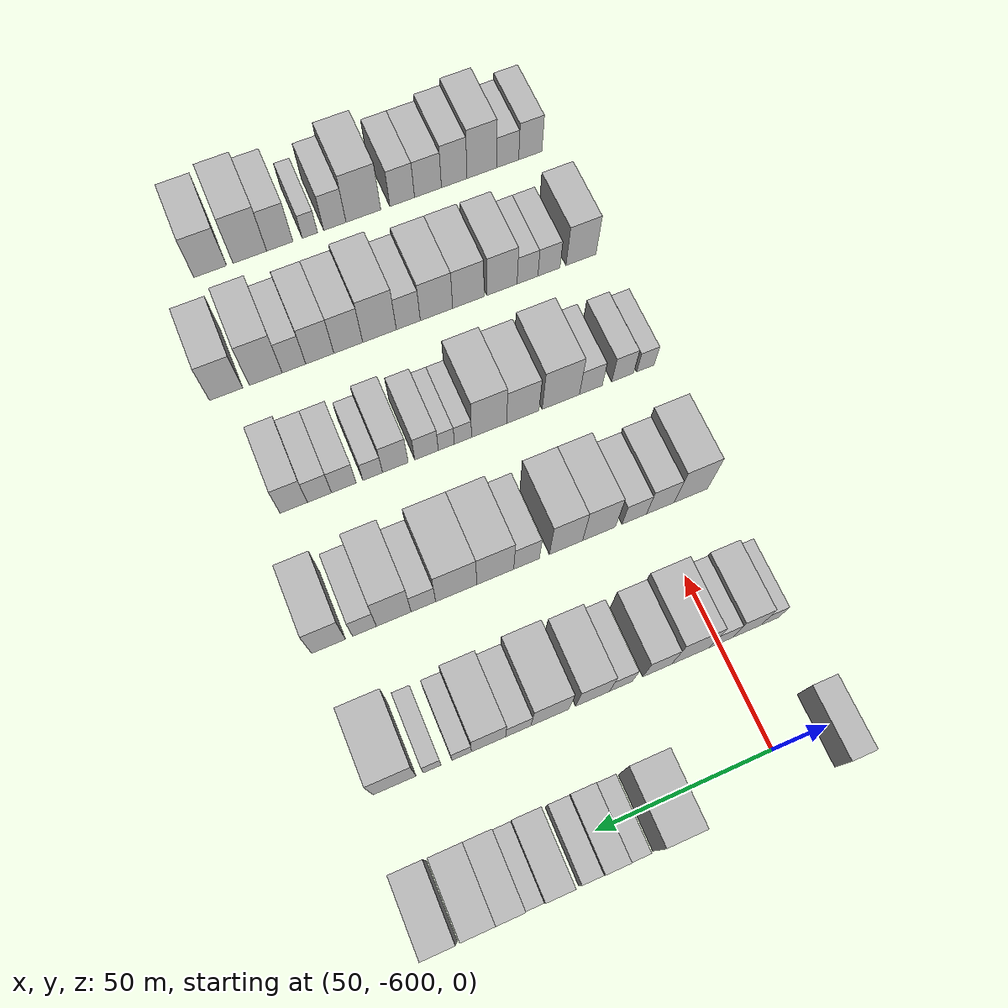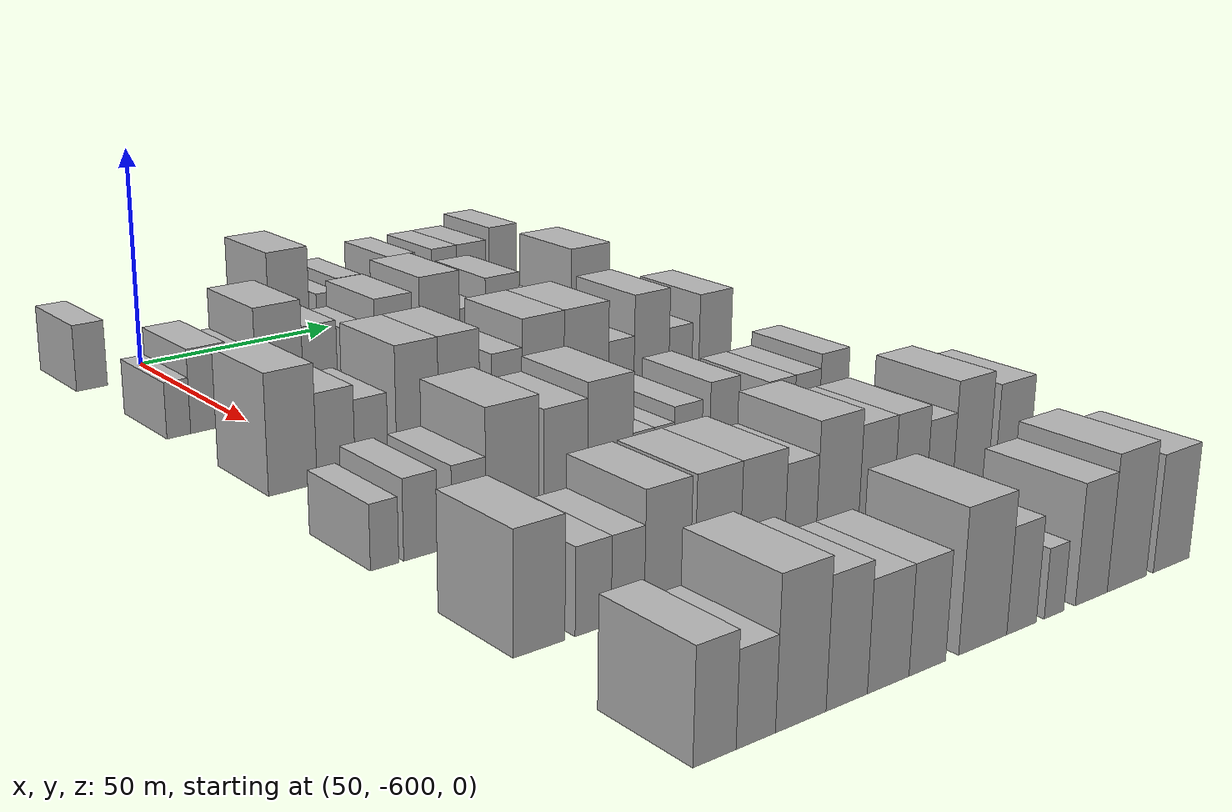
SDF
<sdf version="1.6">
 <world name="default">
  <model name="building_1">
   <static>1</static>
   <pose>50.0000 -616.3699 0 0.000000 0.000000 0.000000</pose>
   <link name="link">
    <pose>0 0 7.50 0 0 0</pose>
    <collision name="collision"><geometry><box><size>20.0000 7.2602 15.0000</size></box></geometry></collision>
    <visual name="visual">
     <cast_shadows>0</cast_shadows>
     <geometry><box><size>20.0000 7.2602 15.0000</size></box></geometry>
     <material>
      <script>
       <uri>model://HANNAS_wall/materials/scripts</uri>
       <uri>model://HANNAS_wall/materials/textures</uri>
       <name>vrc/HANNAS_wall</name>
      </script>
     </material>
    </visual>
   </link>
  </model>
  <model name="building_2">
   <static>1</static>
   <pose>50.0000 -566.4048 0 0.000000 0.000000 0.000000</pose>
   <link name="link">
    <pose>0 0 12.00 0 0 0</pose>
    <collision name="collision"><geometry><box><size>20.0000 10.8900 24.0000</size></box></geometry></collision>
    <visual name="visual">
     <cast_shadows>0</cast_shadows>
     <geometry><box><size>20.0000 10.8900 24.0000</size></box></geometry>
     <material>
      <script>
       <uri>model://HANNAS_wall/materials/scripts</uri>
       <uri>model://HANNAS_wall/materials/textures</uri>
       <name>vrc/HANNAS_wall</name>
      </script>
     </material>
    </visual>
   </link>
  </model>
  <model name="building_3">
   <static>1</static>
   <pose>50.0000 -556.1488 0 0.000000 0.000000 0.000000</pose>
   <link name="link">
    <pose>0 0 6.00 0 0 0</pose>
    <collision name="collision"><geometry><box><size>20.0000 5.6221 12.0000</size></box></geometry></collision>
    <visual name="visual">
     <cast_shadows>0</cast_shadows>
     <geometry><box><size>20.0000 5.6221 12.0000</size></box></geometry>
     <material>
      <script>
       <uri>model://HANNAS_wall/materials/scripts</uri>
       <uri>model://HANNAS_wall/materials/textures</uri>
       <name>vrc/HANNAS_wall</name>
      </script>
     </material>
    </visual>
   </link>
  </model>
  <model name="building_4">
   <static>1</static>
   <pose>50.0000 -549.8595 0 0.000000 0.000000 0.000000</pose>
   <link name="link">
    <pose>0 0 7.50 0 0 0</pose>
    <collision name="collision"><geometry><box><size>20.0000 6.9566 15.0000</size></box></geometry></collision>
    <visual name="visual">
     <cast_shadows>0</cast_shadows>
     <geometry><box><size>20.0000 6.9566 15.0000</size></box></geometry>
     <material>
      <script>
       <uri>model://HANNAS_wall/materials/scripts</uri>
       <uri>model://HANNAS_wall/materials/textures</uri>
       <name>vrc/HANNAS_wall</name>
      </script>
     </material>
    </visual>
   </link>
  </model>
  <model name="building_5">
   <static>1</static>
   <pose>50.0000 -543.4747 0 0.000000 0.000000 0.000000</pose>
   <link name="link">
    <pose>0 0 6.00 0 0 0</pose>
    <collision name="collision"><geometry><box><size>20.0000 5.8130 12.0000</size></box></geometry></collision>
    <visual name="visual">
     <cast_shadows>0</cast_shadows>
     <geometry><box><size>20.0000 5.8130 12.0000</size></box></geometry>
     <material>
      <script>
       <uri>model://HANNAS_wall/materials/scripts</uri>
       <uri>model://HANNAS_wall/materials/textures</uri>
       <name>vrc/HANNAS_wall</name>
      </script>
     </material>
    </visual>
   </link>
  </model>
  <model name="building_6">
   <static>1</static>
   <pose>50.0000 -534.6641 0 0.000000 0.000000 0.000000</pose>
   <link name="link">
    <pose>0 0 9.00 0 0 0</pose>
    <collision name="collision"><geometry><box><size>20.0000 7.8081 18.0000</size></box></geometry></collision>
    <visual name="visual">
     <cast_shadows>0</cast_shadows>
     <geometry><box><size>20.0000 7.8081 18.0000</size></box></geometry>
     <material>
      <script>
       <uri>model://HANNAS_wall/materials/scripts</uri>
       <uri>model://HANNAS_wall/materials/textures</uri>
       <name>vrc/HANNAS_wall</name>
      </script>
     </material>
    </visual>
   </link>
  </model>
  <model name="building_7">
   <static>1</static>
   <pose>50.0000 -528.2909 0 0.000000 0.000000 0.000000</pose>
   <link name="link">
    <pose>0 0 6.00 0 0 0</pose>
    <collision name="collision"><geometry><box><size>20.0000 4.9383 12.0000</size></box></geometry></collision>
    <visual name="visual">
     <cast_shadows>0</cast_shadows>
     <geometry><box><size>20.0000 4.9383 12.0000</size></box></geometry>
     <material>
      <script>
       <uri>model://HANNAS_wall/materials/scripts</uri>
       <uri>model://HANNAS_wall/materials/textures</uri>
       <name>vrc/HANNAS_wall</name>
      </script>
     </material>
    </visual>
   </link>
  </model>
  <model name="building_8">
   <static>1</static>
   <pose>50.0000 -522.0054 0 0.000000 0.000000 0.000000</pose>
   <link name="link">
    <pose>0 0 9.00 0 0 0</pose>
    <collision name="collision"><geometry><box><size>20.0000 7.6328 18.0000</size></box></geometry></collision>
    <visual name="visual">
     <cast_shadows>0</cast_shadows>
     <geometry><box><size>20.0000 7.6328 18.0000</size></box></geometry>
     <material>
      <script>
       <uri>model://HANNAS_wall/materials/scripts</uri>
       <uri>model://HANNAS_wall/materials/textures</uri>
       <name>vrc/HANNAS_wall</name>
      </script>
     </material>
    </visual>
   </link>
  </model>
  <model name="building_9">
   <static>1</static>
   <pose>50.0000 -513.7123 0 0.000000 0.000000 0.000000</pose>
   <link name="link">
    <pose>0 0 9.00 0 0 0</pose>
    <collision name="collision"><geometry><box><size>20.0000 8.9535 18.0000</size></box></geometry></collision>
    <visual name="visual">
     <cast_shadows>0</cast_shadows>
     <geometry><box><size>20.0000 8.9535 18.0000</size></box></geometry>
     <material>
      <script>
       <uri>model://HANNAS_wall/materials/scripts</uri>
       <uri>model://HANNAS_wall/materials/textures</uri>
       <name>vrc/HANNAS_wall</name>
      </script>
     </material>
    </visual>
   </link>
  </model>
  <model name="building_10">
   <static>1</static>
   <pose>50.0000 -503.8203 0 0.000000 0.000000 0.000000</pose>
   <link name="link">
    <pose>0 0 10.50 0 0 0</pose>
    <collision name="collision"><geometry><box><size>20.0000 8.8305 21.0000</size></box></geometry></collision>
    <visual name="visual">
     <cast_shadows>0</cast_shadows>
     <geometry><box><size>20.0000 8.8305 21.0000</size></box></geometry>
     <material>
      <script>
       <uri>model://HANNAS_wall/materials/scripts</uri>
       <uri>model://HANNAS_wall/materials/textures</uri>
       <name>vrc/HANNAS_wall</name>
      </script>
     </material>
    </visual>
   </link>
  </model>
  <model name="building_129">
   <static>1</static>
   <pose>90.0000 -615.3354 0 0.000000 0.000000 0.000000</pose>
   <link name="link">
    <pose>0 0 6.00 0 0 0</pose>
    <collision name="collision"><geometry><box><size>20.0000 5.3293 12.0000</size></box></geometry></collision>
    <visual name="visual">
     <cast_shadows>0</cast_shadows>
     <geometry><box><size>20.0000 5.3293 12.0000</size></box></geometry>
     <material>
      <script>
       <uri>model://HANNAS_wall/materials/scripts</uri>
       <uri>model://HANNAS_wall/materials/textures</uri>
       <name>vrc/HANNAS_wall</name>
      </script>
     </material>
    </visual>
   </link>
  </model>
  <model name="building_130">
   <static>1</static>
   <pose>90.0000 -608.3362 0 0.000000 0.000000 0.000000</pose>
   <link name="link">
    <pose>0 0 9.00 0 0 0</pose>
    <collision name="collision"><geometry><box><size>20.0000 8.6690 18.0000</size></box></geometry></collision>
    <visual name="visual">
     <cast_shadows>0</cast_shadows>
     <geometry><box><size>20.0000 8.6690 18.0000</size></box></geometry>
     <material>
      <script>
       <uri>model://HANNAS_wall/materials/scripts</uri>
       <uri>model://HANNAS_wall/materials/textures</uri>
       <name>vrc/HANNAS_wall</name>
      </script>
     </material>
    </visual>
   </link>
  </model>
  <model name="building_131">
   <static>1</static>
   <pose>90.0000 -600.6111 0 0.000000 0.000000 0.000000</pose>
   <link name="link">
    <pose>0 0 7.50 0 0 0</pose>
    <collision name="collision"><geometry><box><size>20.0000 6.7813 15.0000</size></box></geometry></collision>
    <visual name="visual">
     <cast_shadows>0</cast_shadows>
     <geometry><box><size>20.0000 6.7813 15.0000</size></box></geometry>
     <material>
      <script>
       <uri>model://HANNAS_wall/materials/scripts</uri>
       <uri>model://HANNAS_wall/materials/textures</uri>
       <name>vrc/HANNAS_wall</name>
      </script>
     </material>
    </visual>
   </link>
  </model>
  <model name="building_132">
   <static>1</static>
   <pose>90.0000 -591.6251 0 0.000000 0.000000 0.000000</pose>
   <link name="link">
    <pose>0 0 12.00 0 0 0</pose>
    <collision name="collision"><geometry><box><size>20.0000 11.1907 24.0000</size></box></geometry></collision>
    <visual name="visual">
     <cast_shadows>0</cast_shadows>
     <geometry><box><size>20.0000 11.1907 24.0000</size></box></geometry>
     <material>
      <script>
       <uri>model://HANNAS_wall/materials/scripts</uri>
       <uri>model://HANNAS_wall/materials/textures</uri>
       <name>vrc/HANNAS_wall</name>
      </script>
     </material>
    </visual>
   </link>
  </model>
  <model name="building_133">
   <static>1</static>
   <pose>90.0000 -581.7948 0 0.000000 0.000000 0.000000</pose>
   <link name="link">
    <pose>0 0 9.00 0 0 0</pose>
    <collision name="collision"><geometry><box><size>20.0000 8.4698 18.0000</size></box></geometry></collision>
    <visual name="visual">
     <cast_shadows>0</cast_shadows>
     <geometry><box><size>20.0000 8.4698 18.0000</size></box></geometry>
     <material>
      <script>
       <uri>model://HANNAS_wall/materials/scripts</uri>
       <uri>model://HANNAS_wall/materials/textures</uri>
       <name>vrc/HANNAS_wall</name>
      </script>
     </material>
    </visual>
   </link>
  </model>
  <model name="building_134">
   <static>1</static>
   <pose>90.0000 -571.2249 0 0.000000 0.000000 0.000000</pose>
   <link name="link">
    <pose>0 0 7.50 0 0 0</pose>
    <collision name="collision"><geometry><box><size>20.0000 6.6700 15.0000</size></box></geometry></collision>
    <visual name="visual">
     <cast_shadows>0</cast_shadows>
     <geometry><box><size>20.0000 6.6700 15.0000</size></box></geometry>
     <material>
      <script>
       <uri>model://HANNAS_wall/materials/scripts</uri>
       <uri>model://HANNAS_wall/materials/textures</uri>
       <name>vrc/HANNAS_wall</name>
      </script>
     </material>
    </visual>
   </link>
  </model>
  <model name="building_135">
   <static>1</static>
   <pose>90.0000 -563.0262 0 0.000000 0.000000 0.000000</pose>
   <link name="link">
    <pose>0 0 10.50 0 0 0</pose>
    <collision name="collision"><geometry><box><size>20.0000 9.7274 21.0000</size></box></geometry></collision>
    <visual name="visual">
     <cast_shadows>0</cast_shadows>
     <geometry><box><size>20.0000 9.7274 21.0000</size></box></geometry>
     <material>
      <script>
       <uri>model://HANNAS_wall/materials/scripts</uri>
       <uri>model://HANNAS_wall/materials/textures</uri>
       <name>vrc/HANNAS_wall</name>
      </script>
     </material>
    </visual>
   </link>
  </model>
  <model name="building_136">
   <static>1</static>
   <pose>90.0000 -550.7840 0 0.000000 0.000000 0.000000</pose>
   <link name="link">
    <pose>0 0 12.00 0 0 0</pose>
    <collision name="collision"><geometry><box><size>20.0000 10.7570 24.0000</size></box></geometry></collision>
    <visual name="visual">
     <cast_shadows>0</cast_shadows>
     <geometry><box><size>20.0000 10.7570 24.0000</size></box></geometry>
     <material>
      <script>
       <uri>model://HANNAS_wall/materials/scripts</uri>
       <uri>model://HANNAS_wall/materials/textures</uri>
       <name>vrc/HANNAS_wall</name>
      </script>
     </material>
    </visual>
   </link>
  </model>
  <model name="building_137">
   <static>1</static>
   <pose>90.0000 -541.8332 0 0.000000 0.000000 0.000000</pose>
   <link name="link">
    <pose>0 0 7.50 0 0 0</pose>
    <collision name="collision"><geometry><box><size>20.0000 7.1446 15.0000</size></box></geometry></collision>
    <visual name="visual">
     <cast_shadows>0</cast_shadows>
     <geometry><box><size>20.0000 7.1446 15.0000</size></box></geometry>
     <material>
      <script>
       <uri>model://HANNAS_wall/materials/scripts</uri>
       <uri>model://HANNAS_wall/materials/textures</uri>
       <name>vrc/HANNAS_wall</name>
      </script>
     </material>
    </visual>
   </link>
  </model>
  <model name="building_138">
   <static>1</static>
   <pose>90.0000 -533.5028 0 0.000000 0.000000 0.000000</pose>
   <link name="link">
    <pose>0 0 10.50 0 0 0</pose>
    <collision name="collision"><geometry><box><size>20.0000 9.5161 21.0000</size></box></geometry></collision>
    <visual name="visual">
     <cast_shadows>0</cast_shadows>
     <geometry><box><size>20.0000 9.5161 21.0000</size></box></geometry>
     <material>
      <script>
       <uri>model://HANNAS_wall/materials/scripts</uri>
       <uri>model://HANNAS_wall/materials/textures</uri>
       <name>vrc/HANNAS_wall</name>
      </script>
     </material>
    </visual>
   </link>
  </model>
  <model name="building_139">
   <static>1</static>
   <pose>90.0000 -526.0435 0 0.000000 0.000000 0.000000</pose>
   <link name="link">
    <pose>0 0 6.00 0 0 0</pose>
    <collision name="collision"><geometry><box><size>20.0000 5.4025 12.0000</size></box></geometry></collision>
    <visual name="visual">
     <cast_shadows>0</cast_shadows>
     <geometry><box><size>20.0000 5.4025 12.0000</size></box></geometry>
     <material>
      <script>
       <uri>model://HANNAS_wall/materials/scripts</uri>
       <uri>model://HANNAS_wall/materials/textures</uri>
       <name>vrc/HANNAS_wall</name>
      </script>
     </material>
    </visual>
   </link>
  </model>
  <model name="building_140">
   <static>1</static>
   <pose>90.0000 -517.8866 0 0.000000 0.000000 0.000000</pose>
   <link name="link">
    <pose>0 0 6.00 0 0 0</pose>
    <collision name="collision"><geometry><box><size>20.0000 4.9112 12.0000</size></box></geometry></collision>
    <visual name="visual">
     <cast_shadows>0</cast_shadows>
     <geometry><box><size>20.0000 4.9112 12.0000</size></box></geometry>
     <material>
      <script>
       <uri>model://HANNAS_wall/materials/scripts</uri>
       <uri>model://HANNAS_wall/materials/textures</uri>
       <name>vrc/HANNAS_wall</name>
      </script>
     </material>
    </visual>
   </link>
  </model>
  <model name="building_141">
   <static>1</static>
   <pose>90.0000 -507.5710 0 0.000000 0.000000 0.000000</pose>
   <link name="link">
    <pose>0 0 12.00 0 0 0</pose>
    <collision name="collision"><geometry><box><size>20.0000 11.7202 24.0000</size></box></geometry></collision>
    <visual name="visual">
     <cast_shadows>0</cast_shadows>
     <geometry><box><size>20.0000 11.7202 24.0000</size></box></geometry>
     <material>
      <script>
       <uri>model://HANNAS_wall/materials/scripts</uri>
       <uri>model://HANNAS_wall/materials/textures</uri>
       <name>vrc/HANNAS_wall</name>
      </script>
     </material>
    </visual>
   </link>
  </model>
  <model name="building_265">
   <static>1</static>
   <pose>130.0000 -611.7837 0 0.000000 0.000000 0.000000</pose>
   <link name="link">
    <pose>0 0 12.00 0 0 0</pose>
    <collision name="collision"><geometry><box><size>20.0000 10.4325 24.0000</size></box></geometry></collision>
    <visual name="visual">
     <cast_shadows>0</cast_shadows>
     <geometry><box><size>20.0000 10.4325 24.0000</size></box></geometry>
     <material>
      <script>
       <uri>model://HANNAS_wall/materials/scripts</uri>
       <uri>model://HANNAS_wall/materials/textures</uri>
       <name>vrc/HANNAS_wall</name>
      </script>
     </material>
    </visual>
   </link>
  </model>
  <model name="building_266">
   <static>1</static>
   <pose>130.0000 -602.3361 0 0.000000 0.000000 0.000000</pose>
   <link name="link">
    <pose>0 0 9.00 0 0 0</pose>
    <collision name="collision"><geometry><box><size>20.0000 8.4627 18.0000</size></box></geometry></collision>
    <visual name="visual">
     <cast_shadows>0</cast_shadows>
     <geometry><box><size>20.0000 8.4627 18.0000</size></box></geometry>
     <material>
      <script>
       <uri>model://HANNAS_wall/materials/scripts</uri>
       <uri>model://HANNAS_wall/materials/textures</uri>
       <name>vrc/HANNAS_wall</name>
      </script>
     </material>
    </visual>
   </link>
  </model>
  <model name="building_267">
   <static>1</static>
   <pose>130.0000 -594.3549 0 0.000000 0.000000 0.000000</pose>
   <link name="link">
    <pose>0 0 7.50 0 0 0</pose>
    <collision name="collision"><geometry><box><size>20.0000 7.4997 15.0000</size></box></geometry></collision>
    <visual name="visual">
     <cast_shadows>0</cast_shadows>
     <geometry><box><size>20.0000 7.4997 15.0000</size></box></geometry>
     <material>
      <script>
       <uri>model://HANNAS_wall/materials/scripts</uri>
       <uri>model://HANNAS_wall/materials/textures</uri>
       <name>vrc/HANNAS_wall</name>
      </script>
     </material>
    </visual>
   </link>
  </model>
  <model name="building_268">
   <static>1</static>
   <pose>130.0000 -583.6212 0 0.000000 0.000000 0.000000</pose>
   <link name="link">
    <pose>0 0 12.00 0 0 0</pose>
    <collision name="collision"><geometry><box><size>20.0000 9.9678 24.0000</size></box></geometry></collision>
    <visual name="visual">
     <cast_shadows>0</cast_shadows>
     <geometry><box><size>20.0000 9.9678 24.0000</size></box></geometry>
     <material>
      <script>
       <uri>model://HANNAS_wall/materials/scripts</uri>
       <uri>model://HANNAS_wall/materials/textures</uri>
       <name>vrc/HANNAS_wall</name>
      </script>
     </material>
    </visual>
   </link>
  </model>
  <model name="building_269">
   <static>1</static>
   <pose>130.0000 -573.6408 0 0.000000 0.000000 0.000000</pose>
   <link name="link">
    <pose>0 0 12.00 0 0 0</pose>
    <collision name="collision"><geometry><box><size>20.0000 9.9930 24.0000</size></box></geometry></collision>
    <visual name="visual">
     <cast_shadows>0</cast_shadows>
     <geometry><box><size>20.0000 9.9930 24.0000</size></box></geometry>
     <material>
      <script>
       <uri>model://HANNAS_wall/materials/scripts</uri>
       <uri>model://HANNAS_wall/materials/textures</uri>
       <name>vrc/HANNAS_wall</name>
      </script>
     </material>
    </visual>
   </link>
  </model>
  <model name="building_270">
   <static>1</static>
   <pose>130.0000 -561.8302 0 0.000000 0.000000 0.000000</pose>
   <link name="link">
    <pose>0 0 9.00 0 0 0</pose>
    <collision name="collision"><geometry><box><size>20.0000 7.6282 18.0000</size></box></geometry></collision>
    <visual name="visual">
     <cast_shadows>0</cast_shadows>
     <geometry><box><size>20.0000 7.6282 18.0000</size></box></geometry>
     <material>
      <script>
       <uri>model://HANNAS_wall/materials/scripts</uri>
       <uri>model://HANNAS_wall/materials/textures</uri>
       <name>vrc/HANNAS_wall</name>
      </script>
     </material>
    </visual>
   </link>
  </model>
  <model name="building_271">
   <static>1</static>
   <pose>130.0000 -552.5620 0 0.000000 0.000000 0.000000</pose>
   <link name="link">
    <pose>0 0 12.00 0 0 0</pose>
    <collision name="collision"><geometry><box><size>20.0000 10.9082 24.0000</size></box></geometry></collision>
    <visual name="visual">
     <cast_shadows>0</cast_shadows>
     <geometry><box><size>20.0000 10.9082 24.0000</size></box></geometry>
     <material>
      <script>
       <uri>model://HANNAS_wall/materials/scripts</uri>
       <uri>model://HANNAS_wall/materials/textures</uri>
       <name>vrc/HANNAS_wall</name>
      </script>
     </material>
    </visual>
   </link>
  </model>
  <model name="building_272">
   <static>1</static>
   <pose>130.0000 -541.1286 0 0.000000 0.000000 0.000000</pose>
   <link name="link">
    <pose>0 0 12.00 0 0 0</pose>
    <collision name="collision"><geometry><box><size>20.0000 11.9586 24.0000</size></box></geometry></collision>
    <visual name="visual">
     <cast_shadows>0</cast_shadows>
     <geometry><box><size>20.0000 11.9586 24.0000</size></box></geometry>
     <material>
      <script>
       <uri>model://HANNAS_wall/materials/scripts</uri>
       <uri>model://HANNAS_wall/materials/textures</uri>
       <name>vrc/HANNAS_wall</name>
      </script>
     </material>
    </visual>
   </link>
  </model>
  <model name="building_273">
   <static>1</static>
   <pose>130.0000 -531.5903 0 0.000000 0.000000 0.000000</pose>
   <link name="link">
    <pose>0 0 7.50 0 0 0</pose>
    <collision name="collision"><geometry><box><size>20.0000 7.1180 15.0000</size></box></geometry></collision>
    <visual name="visual">
     <cast_shadows>0</cast_shadows>
     <geometry><box><size>20.0000 7.1180 15.0000</size></box></geometry>
     <material>
      <script>
       <uri>model://HANNAS_wall/materials/scripts</uri>
       <uri>model://HANNAS_wall/materials/textures</uri>
       <name>vrc/HANNAS_wall</name>
      </script>
     </material>
    </visual>
   </link>
  </model>
  <model name="building_274">
   <static>1</static>
   <pose>130.0000 -523.0585 0 0.000000 0.000000 0.000000</pose>
   <link name="link">
    <pose>0 0 12.00 0 0 0</pose>
    <collision name="collision"><geometry><box><size>20.0000 9.9456 24.0000</size></box></geometry></collision>
    <visual name="visual">
     <cast_shadows>0</cast_shadows>
     <geometry><box><size>20.0000 9.9456 24.0000</size></box></geometry>
     <material>
      <script>
       <uri>model://HANNAS_wall/materials/scripts</uri>
       <uri>model://HANNAS_wall/materials/textures</uri>
       <name>vrc/HANNAS_wall</name>
      </script>
     </material>
    </visual>
   </link>
  </model>
  <model name="building_275">
   <static>1</static>
   <pose>130.0000 -514.6843 0 0.000000 0.000000 0.000000</pose>
   <link name="link">
    <pose>0 0 7.50 0 0 0</pose>
    <collision name="collision"><geometry><box><size>20.0000 6.8028 15.0000</size></box></geometry></collision>
    <visual name="visual">
     <cast_shadows>0</cast_shadows>
     <geometry><box><size>20.0000 6.8028 15.0000</size></box></geometry>
     <material>
      <script>
       <uri>model://HANNAS_wall/materials/scripts</uri>
       <uri>model://HANNAS_wall/materials/textures</uri>
       <name>vrc/HANNAS_wall</name>
      </script>
     </material>
    </visual>
   </link>
  </model>
  <model name="building_276">
   <static>1</static>
   <pose>130.0000 -504.4841 0 0.000000 0.000000 0.000000</pose>
   <link name="link">
    <pose>0 0 10.50 0 0 0</pose>
    <collision name="collision"><geometry><box><size>20.0000 9.5976 21.0000</size></box></geometry></collision>
    <visual name="visual">
     <cast_shadows>0</cast_shadows>
     <geometry><box><size>20.0000 9.5976 21.0000</size></box></geometry>
     <material>
      <script>
       <uri>model://HANNAS_wall/materials/scripts</uri>
       <uri>model://HANNAS_wall/materials/textures</uri>
       <name>vrc/HANNAS_wall</name>
      </script>
     </material>
    </visual>
   </link>
  </model>
  <model name="building_399">
   <static>1</static>
   <pose>170.0000 -617.1701 0 0.000000 0.000000 0.000000</pose>
   <link name="link">
    <pose>0 0 6.00 0 0 0</pose>
    <collision name="collision"><geometry><box><size>20.0000 5.6598 12.0000</size></box></geometry></collision>
    <visual name="visual">
     <cast_shadows>0</cast_shadows>
     <geometry><box><size>20.0000 5.6598 12.0000</size></box></geometry>
     <material>
      <script>
       <uri>model://HANNAS_wall/materials/scripts</uri>
       <uri>model://HANNAS_wall/materials/textures</uri>
       <name>vrc/HANNAS_wall</name>
      </script>
     </material>
    </visual>
   </link>
  </model>
  <model name="building_400">
   <static>1</static>
   <pose>170.0000 -609.8480 0 0.000000 0.000000 0.000000</pose>
   <link name="link">
    <pose>0 0 7.50 0 0 0</pose>
    <collision name="collision"><geometry><box><size>20.0000 6.9845 15.0000</size></box></geometry></collision>
    <visual name="visual">
     <cast_shadows>0</cast_shadows>
     <geometry><box><size>20.0000 6.9845 15.0000</size></box></geometry>
     <material>
      <script>
       <uri>model://HANNAS_wall/materials/scripts</uri>
       <uri>model://HANNAS_wall/materials/textures</uri>
       <name>vrc/HANNAS_wall</name>
      </script>
     </material>
    </visual>
   </link>
  </model>
  <model name="building_401">
   <static>1</static>
   <pose>170.0000 -599.7295 0 0.000000 0.000000 0.000000</pose>
   <link name="link">
    <pose>0 0 7.50 0 0 0</pose>
    <collision name="collision"><geometry><box><size>20.0000 7.2524 15.0000</size></box></geometry></collision>
    <visual name="visual">
     <cast_shadows>0</cast_shadows>
     <geometry><box><size>20.0000 7.2524 15.0000</size></box></geometry>
     <material>
      <script>
       <uri>model://HANNAS_wall/materials/scripts</uri>
       <uri>model://HANNAS_wall/materials/textures</uri>
       <name>vrc/HANNAS_wall</name>
      </script>
     </material>
    </visual>
   </link>
  </model>
  <model name="building_402">
   <static>1</static>
   <pose>170.0000 -590.2328 0 0.000000 0.000000 0.000000</pose>
   <link name="link">
    <pose>0 0 12.00 0 0 0</pose>
    <collision name="collision"><geometry><box><size>20.0000 11.7409 24.0000</size></box></geometry></collision>
    <visual name="visual">
     <cast_shadows>0</cast_shadows>
     <geometry><box><size>20.0000 11.7409 24.0000</size></box></geometry>
     <material>
      <script>
       <uri>model://HANNAS_wall/materials/scripts</uri>
       <uri>model://HANNAS_wall/materials/textures</uri>
       <name>vrc/HANNAS_wall</name>
      </script>
     </material>
    </visual>
   </link>
  </model>
  <model name="building_403">
   <static>1</static>
   <pose>170.0000 -578.3081 0 0.000000 0.000000 0.000000</pose>
   <link name="link">
    <pose>0 0 10.50 0 0 0</pose>
    <collision name="collision"><geometry><box><size>20.0000 10.1086 21.0000</size></box></geometry></collision>
    <visual name="visual">
     <cast_shadows>0</cast_shadows>
     <geometry><box><size>20.0000 10.1086 21.0000</size></box></geometry>
     <material>
      <script>
       <uri>model://HANNAS_wall/materials/scripts</uri>
       <uri>model://HANNAS_wall/materials/textures</uri>
       <name>vrc/HANNAS_wall</name>
      </script>
     </material>
    </visual>
   </link>
  </model>
  <model name="building_404">
   <static>1</static>
   <pose>170.0000 -567.8553 0 0.000000 0.000000 0.000000</pose>
   <link name="link">
    <pose>0 0 12.00 0 0 0</pose>
    <collision name="collision"><geometry><box><size>20.0000 10.7971 24.0000</size></box></geometry></collision>
    <visual name="visual">
     <cast_shadows>0</cast_shadows>
     <geometry><box><size>20.0000 10.7971 24.0000</size></box></geometry>
     <material>
      <script>
       <uri>model://HANNAS_wall/materials/scripts</uri>
       <uri>model://HANNAS_wall/materials/textures</uri>
       <name>vrc/HANNAS_wall</name>
      </script>
     </material>
    </visual>
   </link>
  </model>
  <model name="building_405">
   <static>1</static>
   <pose>170.0000 -559.8224 0 0.000000 0.000000 0.000000</pose>
   <link name="link">
    <pose>0 0 6.00 0 0 0</pose>
    <collision name="collision"><geometry><box><size>20.0000 5.2688 12.0000</size></box></geometry></collision>
    <visual name="visual">
     <cast_shadows>0</cast_shadows>
     <geometry><box><size>20.0000 5.2688 12.0000</size></box></geometry>
     <material>
      <script>
       <uri>model://HANNAS_wall/materials/scripts</uri>
       <uri>model://HANNAS_wall/materials/textures</uri>
       <name>vrc/HANNAS_wall</name>
      </script>
     </material>
    </visual>
   </link>
  </model>
  <model name="building_406">
   <static>1</static>
   <pose>170.0000 -554.7399 0 0.000000 0.000000 0.000000</pose>
   <link name="link">
    <pose>0 0 6.00 0 0 0</pose>
    <collision name="collision"><geometry><box><size>20.0000 4.8962 12.0000</size></box></geometry></collision>
    <visual name="visual">
     <cast_shadows>0</cast_shadows>
     <geometry><box><size>20.0000 4.8962 12.0000</size></box></geometry>
     <material>
      <script>
       <uri>model://HANNAS_wall/materials/scripts</uri>
       <uri>model://HANNAS_wall/materials/textures</uri>
       <name>vrc/HANNAS_wall</name>
      </script>
     </material>
    </visual>
   </link>
  </model>
  <model name="building_407">
   <static>1</static>
   <pose>170.0000 -548.7158 0 0.000000 0.000000 0.000000</pose>
   <link name="link">
    <pose>0 0 7.50 0 0 0</pose>
    <collision name="collision"><geometry><box><size>20.0000 7.1519 15.0000</size></box></geometry></collision>
    <visual name="visual">
     <cast_shadows>0</cast_shadows>
     <geometry><box><size>20.0000 7.1519 15.0000</size></box></geometry>
     <material>
      <script>
       <uri>model://HANNAS_wall/materials/scripts</uri>
       <uri>model://HANNAS_wall/materials/textures</uri>
       <name>vrc/HANNAS_wall</name>
      </script>
     </material>
    </visual>
   </link>
  </model>
  <model name="building_408">
   <static>1</static>
   <pose>170.0000 -539.2756 0 0.000000 0.000000 0.000000</pose>
   <link name="link">
    <pose>0 0 9.00 0 0 0</pose>
    <collision name="collision"><geometry><box><size>20.0000 7.7285 18.0000</size></box></geometry></collision>
    <visual name="visual">
     <cast_shadows>0</cast_shadows>
     <geometry><box><size>20.0000 7.7285 18.0000</size></box></geometry>
     <material>
      <script>
       <uri>model://HANNAS_wall/materials/scripts</uri>
       <uri>model://HANNAS_wall/materials/textures</uri>
       <name>vrc/HANNAS_wall</name>
      </script>
     </material>
    </visual>
   </link>
  </model>
  <model name="building_409">
   <static>1</static>
   <pose>170.0000 -532.4705 0 0.000000 0.000000 0.000000</pose>
   <link name="link">
    <pose>0 0 6.00 0 0 0</pose>
    <collision name="collision"><geometry><box><size>20.0000 5.8817 12.0000</size></box></geometry></collision>
    <visual name="visual">
     <cast_shadows>0</cast_shadows>
     <geometry><box><size>20.0000 5.8817 12.0000</size></box></geometry>
     <material>
      <script>
       <uri>model://HANNAS_wall/materials/scripts</uri>
       <uri>model://HANNAS_wall/materials/textures</uri>
       <name>vrc/HANNAS_wall</name>
      </script>
     </material>
    </visual>
   </link>
  </model>
  <model name="building_410">
   <static>1</static>
   <pose>170.0000 -523.8560 0 0.000000 0.000000 0.000000</pose>
   <link name="link">
    <pose>0 0 7.50 0 0 0</pose>
    <collision name="collision"><geometry><box><size>20.0000 7.3474 15.0000</size></box></geometry></collision>
    <visual name="visual">
     <cast_shadows>0</cast_shadows>
     <geometry><box><size>20.0000 7.3474 15.0000</size></box></geometry>
     <material>
      <script>
       <uri>model://HANNAS_wall/materials/scripts</uri>
       <uri>model://HANNAS_wall/materials/textures</uri>
       <name>vrc/HANNAS_wall</name>
      </script>
     </material>
    </visual>
   </link>
  </model>
  <model name="building_411">
   <static>1</static>
   <pose>170.0000 -516.6168 0 0.000000 0.000000 0.000000</pose>
   <link name="link">
    <pose>0 0 7.50 0 0 0</pose>
    <collision name="collision"><geometry><box><size>20.0000 7.1310 15.0000</size></box></geometry></collision>
    <visual name="visual">
     <cast_shadows>0</cast_shadows>
     <geometry><box><size>20.0000 7.1310 15.0000</size></box></geometry>
     <material>
      <script>
       <uri>model://HANNAS_wall/materials/scripts</uri>
       <uri>model://HANNAS_wall/materials/textures</uri>
       <name>vrc/HANNAS_wall</name>
      </script>
     </material>
    </visual>
   </link>
  </model>
  <model name="building_412">
   <static>1</static>
   <pose>170.0000 -509.0154 0 0.000000 0.000000 0.000000</pose>
   <link name="link">
    <pose>0 0 9.00 0 0 0</pose>
    <collision name="collision"><geometry><box><size>20.0000 8.0717 18.0000</size></box></geometry></collision>
    <visual name="visual">
     <cast_shadows>0</cast_shadows>
     <geometry><box><size>20.0000 8.0717 18.0000</size></box></geometry>
     <material>
      <script>
       <uri>model://HANNAS_wall/materials/scripts</uri>
       <uri>model://HANNAS_wall/materials/textures</uri>
       <name>vrc/HANNAS_wall</name>
      </script>
     </material>
    </visual>
   </link>
  </model>
  <model name="building_530">
   <static>1</static>
   <pose>210.0000 -615.0396 0 0.000000 0.000000 0.000000</pose>
   <link name="link">
    <pose>0 0 10.50 0 0 0</pose>
    <collision name="collision"><geometry><box><size>20.0000 9.9207 21.0000</size></box></geometry></collision>
    <visual name="visual">
     <cast_shadows>0</cast_shadows>
     <geometry><box><size>20.0000 9.9207 21.0000</size></box></geometry>
     <material>
      <script>
       <uri>model://HANNAS_wall/materials/scripts</uri>
       <uri>model://HANNAS_wall/materials/textures</uri>
       <name>vrc/HANNAS_wall</name>
      </script>
     </material>
    </visual>
   </link>
  </model>
  <model name="building_531">
   <static>1</static>
   <pose>210.0000 -604.4617 0 0.000000 0.000000 0.000000</pose>
   <link name="link">
    <pose>0 0 7.50 0 0 0</pose>
    <collision name="collision"><geometry><box><size>20.0000 7.2351 15.0000</size></box></geometry></collision>
    <visual name="visual">
     <cast_shadows>0</cast_shadows>
     <geometry><box><size>20.0000 7.2351 15.0000</size></box></geometry>
     <material>
      <script>
       <uri>model://HANNAS_wall/materials/scripts</uri>
       <uri>model://HANNAS_wall/materials/textures</uri>
       <name>vrc/HANNAS_wall</name>
      </script>
     </material>
    </visual>
   </link>
  </model>
  <model name="building_532">
   <static>1</static>
   <pose>210.0000 -597.4375 0 0.000000 0.000000 0.000000</pose>
   <link name="link">
    <pose>0 0 7.50 0 0 0</pose>
    <collision name="collision"><geometry><box><size>20.0000 6.8134 15.0000</size></box></geometry></collision>
    <visual name="visual">
     <cast_shadows>0</cast_shadows>
     <geometry><box><size>20.0000 6.8134 15.0000</size></box></geometry>
     <material>
      <script>
       <uri>model://HANNAS_wall/materials/scripts</uri>
       <uri>model://HANNAS_wall/materials/textures</uri>
       <name>vrc/HANNAS_wall</name>
      </script>
     </material>
    </visual>
   </link>
  </model>
  <model name="building_533">
   <static>1</static>
   <pose>210.0000 -589.1570 0 0.000000 0.000000 0.000000</pose>
   <link name="link">
    <pose>0 0 10.50 0 0 0</pose>
    <collision name="collision"><geometry><box><size>20.0000 9.7476 21.0000</size></box></geometry></collision>
    <visual name="visual">
     <cast_shadows>0</cast_shadows>
     <geometry><box><size>20.0000 9.7476 21.0000</size></box></geometry>
     <material>
      <script>
       <uri>model://HANNAS_wall/materials/scripts</uri>
       <uri>model://HANNAS_wall/materials/textures</uri>
       <name>vrc/HANNAS_wall</name>
      </script>
     </material>
    </visual>
   </link>
  </model>
  <model name="building_534">
   <static>1</static>
   <pose>210.0000 -578.2583 0 0.000000 0.000000 0.000000</pose>
   <link name="link">
    <pose>0 0 10.50 0 0 0</pose>
    <collision name="collision"><geometry><box><size>20.0000 10.0498 21.0000</size></box></geometry></collision>
    <visual name="visual">
     <cast_shadows>0</cast_shadows>
     <geometry><box><size>20.0000 10.0498 21.0000</size></box></geometry>
     <material>
      <script>
       <uri>model://HANNAS_wall/materials/scripts</uri>
       <uri>model://HANNAS_wall/materials/textures</uri>
       <name>vrc/HANNAS_wall</name>
      </script>
     </material>
    </visual>
   </link>
  </model>
  <model name="building_535">
   <static>1</static>
   <pose>210.0000 -568.0811 0 0.000000 0.000000 0.000000</pose>
   <link name="link">
    <pose>0 0 10.50 0 0 0</pose>
    <collision name="collision"><geometry><box><size>20.0000 10.3045 21.0000</size></box></geometry></collision>
    <visual name="visual">
     <cast_shadows>0</cast_shadows>
     <geometry><box><size>20.0000 10.3045 21.0000</size></box></geometry>
     <material>
      <script>
       <uri>model://HANNAS_wall/materials/scripts</uri>
       <uri>model://HANNAS_wall/materials/textures</uri>
       <name>vrc/HANNAS_wall</name>
      </script>
     </material>
    </visual>
   </link>
  </model>
  <model name="building_536">
   <static>1</static>
   <pose>210.0000 -559.1410 0 0.000000 0.000000 0.000000</pose>
   <link name="link">
    <pose>0 0 9.00 0 0 0</pose>
    <collision name="collision"><geometry><box><size>20.0000 7.5757 18.0000</size></box></geometry></collision>
    <visual name="visual">
     <cast_shadows>0</cast_shadows>
     <geometry><box><size>20.0000 7.5757 18.0000</size></box></geometry>
     <material>
      <script>
       <uri>model://HANNAS_wall/materials/scripts</uri>
       <uri>model://HANNAS_wall/materials/textures</uri>
       <name>vrc/HANNAS_wall</name>
      </script>
     </material>
    </visual>
   </link>
  </model>
  <model name="building_537">
   <static>1</static>
   <pose>210.0000 -550.0631 0 0.000000 0.000000 0.000000</pose>
   <link name="link">
    <pose>0 0 12.00 0 0 0</pose>
    <collision name="collision"><geometry><box><size>20.0000 10.5801 24.0000</size></box></geometry></collision>
    <visual name="visual">
     <cast_shadows>0</cast_shadows>
     <geometry><box><size>20.0000 10.5801 24.0000</size></box></geometry>
     <material>
      <script>
       <uri>model://HANNAS_wall/materials/scripts</uri>
       <uri>model://HANNAS_wall/materials/textures</uri>
       <name>vrc/HANNAS_wall</name>
      </script>
     </material>
    </visual>
   </link>
  </model>
  <model name="building_538">
   <static>1</static>
   <pose>210.0000 -540.2740 0 0.000000 0.000000 0.000000</pose>
   <link name="link">
    <pose>0 0 10.50 0 0 0</pose>
    <collision name="collision"><geometry><box><size>20.0000 8.9982 21.0000</size></box></geometry></collision>
    <visual name="visual">
     <cast_shadows>0</cast_shadows>
     <geometry><box><size>20.0000 8.9982 21.0000</size></box></geometry>
     <material>
      <script>
       <uri>model://HANNAS_wall/materials/scripts</uri>
       <uri>model://HANNAS_wall/materials/textures</uri>
       <name>vrc/HANNAS_wall</name>
      </script>
     </material>
    </visual>
   </link>
  </model>
  <model name="building_539">
   <static>1</static>
   <pose>210.0000 -531.4216 0 0.000000 0.000000 0.000000</pose>
   <link name="link">
    <pose>0 0 10.50 0 0 0</pose>
    <collision name="collision"><geometry><box><size>20.0000 8.7066 21.0000</size></box></geometry></collision>
    <visual name="visual">
     <cast_shadows>0</cast_shadows>
     <geometry><box><size>20.0000 8.7066 21.0000</size></box></geometry>
     <material>
      <script>
       <uri>model://HANNAS_wall/materials/scripts</uri>
       <uri>model://HANNAS_wall/materials/textures</uri>
       <name>vrc/HANNAS_wall</name>
      </script>
     </material>
    </visual>
   </link>
  </model>
  <model name="building_540">
   <static>1</static>
   <pose>210.0000 -523.4527 0 0.000000 0.000000 0.000000</pose>
   <link name="link">
    <pose>0 0 9.00 0 0 0</pose>
    <collision name="collision"><geometry><box><size>20.0000 7.2311 18.0000</size></box></geometry></collision>
    <visual name="visual">
     <cast_shadows>0</cast_shadows>
     <geometry><box><size>20.0000 7.2311 18.0000</size></box></geometry>
     <material>
      <script>
       <uri>model://HANNAS_wall/materials/scripts</uri>
       <uri>model://HANNAS_wall/materials/textures</uri>
       <name>vrc/HANNAS_wall</name>
      </script>
     </material>
    </visual>
   </link>
  </model>
  <model name="building_541">
   <static>1</static>
   <pose>210.0000 -514.8019 0 0.000000 0.000000 0.000000</pose>
   <link name="link">
    <pose>0 0 12.00 0 0 0</pose>
    <collision name="collision"><geometry><box><size>20.0000 10.0706 24.0000</size></box></geometry></collision>
    <visual name="visual">
     <cast_shadows>0</cast_shadows>
     <geometry><box><size>20.0000 10.0706 24.0000</size></box></geometry>
     <material>
      <script>
       <uri>model://HANNAS_wall/materials/scripts</uri>
       <uri>model://HANNAS_wall/materials/textures</uri>
       <name>vrc/HANNAS_wall</name>
      </script>
     </material>
    </visual>
   </link>
  </model>
  <model name="building_542">
   <static>1</static>
   <pose>210.0000 -502.7422 0 0.000000 0.000000 0.000000</pose>
   <link name="link">
    <pose>0 0 10.50 0 0 0</pose>
    <collision name="collision"><geometry><box><size>20.0000 10.0486 21.0000</size></box></geometry></collision>
    <visual name="visual">
     <cast_shadows>0</cast_shadows>
     <geometry><box><size>20.0000 10.0486 21.0000</size></box></geometry>
     <material>
      <script>
       <uri>model://HANNAS_wall/materials/scripts</uri>
       <uri>model://HANNAS_wall/materials/textures</uri>
       <name>vrc/HANNAS_wall</name>
      </script>
     </material>
    </visual>
   </link>
  </model>
  <model name="building_672">
   <static>1</static>
   <pose>250.0000 -616.0446 0 0.000000 0.000000 0.000000</pose>
   <link name="link">
    <pose>0 0 9.00 0 0 0</pose>
    <collision name="collision"><geometry><box><size>20.0000 7.9108 18.0000</size></box></geometry></collision>
    <visual name="visual">
     <cast_shadows>0</cast_shadows>
     <geometry><box><size>20.0000 7.9108 18.0000</size></box></geometry>
     <material>
      <script>
       <uri>model://HANNAS_wall/materials/scripts</uri>
       <uri>model://HANNAS_wall/materials/textures</uri>
       <name>vrc/HANNAS_wall</name>
      </script>
     </material>
    </visual>
   </link>
  </model>
  <model name="building_673">
   <static>1</static>
   <pose>250.0000 -608.3485 0 0.000000 0.000000 0.000000</pose>
   <link name="link">
    <pose>0 0 7.50 0 0 0</pose>
    <collision name="collision"><geometry><box><size>20.0000 7.4814 15.0000</size></box></geometry></collision>
    <visual name="visual">
     <cast_shadows>0</cast_shadows>
     <geometry><box><size>20.0000 7.4814 15.0000</size></box></geometry>
     <material>
      <script>
       <uri>model://HANNAS_wall/materials/scripts</uri>
       <uri>model://HANNAS_wall/materials/textures</uri>
       <name>vrc/HANNAS_wall</name>
      </script>
     </material>
    </visual>
   </link>
  </model>
  <model name="building_674">
   <static>1</static>
   <pose>250.0000 -599.6077 0 0.000000 0.000000 0.000000</pose>
   <link name="link">
    <pose>0 0 12.00 0 0 0</pose>
    <collision name="collision"><geometry><box><size>20.0000 10.0002 24.0000</size></box></geometry></collision>
    <visual name="visual">
     <cast_shadows>0</cast_shadows>
     <geometry><box><size>20.0000 10.0002 24.0000</size></box></geometry>
     <material>
      <script>
       <uri>model://HANNAS_wall/materials/scripts</uri>
       <uri>model://HANNAS_wall/materials/textures</uri>
       <name>vrc/HANNAS_wall</name>
      </script>
     </material>
    </visual>
   </link>
  </model>
  <model name="building_675">
   <static>1</static>
   <pose>250.0000 -590.3379 0 0.000000 0.000000 0.000000</pose>
   <link name="link">
    <pose>0 0 10.50 0 0 0</pose>
    <collision name="collision"><geometry><box><size>20.0000 8.5393 21.0000</size></box></geometry></collision>
    <visual name="visual">
     <cast_shadows>0</cast_shadows>
     <geometry><box><size>20.0000 8.5393 21.0000</size></box></geometry>
     <material>
      <script>
       <uri>model://HANNAS_wall/materials/scripts</uri>
       <uri>model://HANNAS_wall/materials/textures</uri>
       <name>vrc/HANNAS_wall</name>
      </script>
     </material>
    </visual>
   </link>
  </model>
  <model name="building_676">
   <static>1</static>
   <pose>250.0000 -581.5937 0 0.000000 0.000000 0.000000</pose>
   <link name="link">
    <pose>0 0 9.00 0 0 0</pose>
    <collision name="collision"><geometry><box><size>20.0000 8.9490 18.0000</size></box></geometry></collision>
    <visual name="visual">
     <cast_shadows>0</cast_shadows>
     <geometry><box><size>20.0000 8.9490 18.0000</size></box></geometry>
     <material>
      <script>
       <uri>model://HANNAS_wall/materials/scripts</uri>
       <uri>model://HANNAS_wall/materials/textures</uri>
       <name>vrc/HANNAS_wall</name>
      </script>
     </material>
    </visual>
   </link>
  </model>
  <model name="building_677">
   <static>1</static>
   <pose>250.0000 -573.0326 0 0.000000 0.000000 0.000000</pose>
   <link name="link">
    <pose>0 0 9.00 0 0 0</pose>
    <collision name="collision"><geometry><box><size>20.0000 8.1733 18.0000</size></box></geometry></collision>
    <visual name="visual">
     <cast_shadows>0</cast_shadows>
     <geometry><box><size>20.0000 8.1733 18.0000</size></box></geometry>
     <material>
      <script>
       <uri>model://HANNAS_wall/materials/scripts</uri>
       <uri>model://HANNAS_wall/materials/textures</uri>
       <name>vrc/HANNAS_wall</name>
      </script>
     </material>
    </visual>
   </link>
  </model>
  <model name="building_678">
   <static>1</static>
   <pose>250.0000 -560.2795 0 0.000000 0.000000 0.000000</pose>
   <link name="link">
    <pose>0 0 12.00 0 0 0</pose>
    <collision name="collision"><geometry><box><size>20.0000 11.3329 24.0000</size></box></geometry></collision>
    <visual name="visual">
     <cast_shadows>0</cast_shadows>
     <geometry><box><size>20.0000 11.3329 24.0000</size></box></geometry>
     <material>
      <script>
       <uri>model://HANNAS_wall/materials/scripts</uri>
       <uri>model://HANNAS_wall/materials/textures</uri>
       <name>vrc/HANNAS_wall</name>
      </script>
     </material>
    </visual>
   </link>
  </model>
  <model name="building_679">
   <static>1</static>
   <pose>250.0000 -550.9851 0 0.000000 0.000000 0.000000</pose>
   <link name="link">
    <pose>0 0 9.00 0 0 0</pose>
    <collision name="collision"><geometry><box><size>20.0000 7.2559 18.0000</size></box></geometry></collision>
    <visual name="visual">
     <cast_shadows>0</cast_shadows>
     <geometry><box><size>20.0000 7.2559 18.0000</size></box></geometry>
     <material>
      <script>
       <uri>model://HANNAS_wall/materials/scripts</uri>
       <uri>model://HANNAS_wall/materials/textures</uri>
       <name>vrc/HANNAS_wall</name>
      </script>
     </material>
    </visual>
   </link>
  </model>
  <model name="building_680">
   <static>1</static>
   <pose>250.0000 -542.8884 0 0.000000 0.000000 0.000000</pose>
   <link name="link">
    <pose>0 0 6.00 0 0 0</pose>
    <collision name="collision"><geometry><box><size>20.0000 4.9375 12.0000</size></box></geometry></collision>
    <visual name="visual">
     <cast_shadows>0</cast_shadows>
     <geometry><box><size>20.0000 4.9375 12.0000</size></box></geometry>
     <material>
      <script>
       <uri>model://HANNAS_wall/materials/scripts</uri>
       <uri>model://HANNAS_wall/materials/textures</uri>
       <name>vrc/HANNAS_wall</name>
      </script>
     </material>
    </visual>
   </link>
  </model>
  <model name="building_681">
   <static>1</static>
   <pose>250.0000 -533.2170 0 0.000000 0.000000 0.000000</pose>
   <link name="link">
    <pose>0 0 10.50 0 0 0</pose>
    <collision name="collision"><geometry><box><size>20.0000 8.4053 21.0000</size></box></geometry></collision>
    <visual name="visual">
     <cast_shadows>0</cast_shadows>
     <geometry><box><size>20.0000 8.4053 21.0000</size></box></geometry>
     <material>
      <script>
       <uri>model://HANNAS_wall/materials/scripts</uri>
       <uri>model://HANNAS_wall/materials/textures</uri>
       <name>vrc/HANNAS_wall</name>
      </script>
     </material>
    </visual>
   </link>
  </model>
  <model name="building_682">
   <static>1</static>
   <pose>250.0000 -523.6597 0 0.000000 0.000000 0.000000</pose>
   <link name="link">
    <pose>0 0 12.00 0 0 0</pose>
    <collision name="collision"><geometry><box><size>20.0000 10.7093 24.0000</size></box></geometry></collision>
    <visual name="visual">
     <cast_shadows>0</cast_shadows>
     <geometry><box><size>20.0000 10.7093 24.0000</size></box></geometry>
     <material>
      <script>
       <uri>model://HANNAS_wall/materials/scripts</uri>
       <uri>model://HANNAS_wall/materials/textures</uri>
       <name>vrc/HANNAS_wall</name>
      </script>
     </material>
    </visual>
   </link>
  </model>
  <model name="building_683">
   <static>1</static>
   <pose>250.0000 -511.1574 0 0.000000 0.000000 0.000000</pose>
   <link name="link">
    <pose>0 0 10.50 0 0 0</pose>
    <collision name="collision"><geometry><box><size>20.0000 10.2952 21.0000</size></box></geometry></collision>
    <visual name="visual">
     <cast_shadows>0</cast_shadows>
     <geometry><box><size>20.0000 10.2952 21.0000</size></box></geometry>
     <material>
      <script>
       <uri>model://HANNAS_wall/materials/scripts</uri>
       <uri>model://HANNAS_wall/materials/textures</uri>
       <name>vrc/HANNAS_wall</name>
      </script>
     </material>
    </visual>
   </link>
  </model>
 </world>
</sdf>
